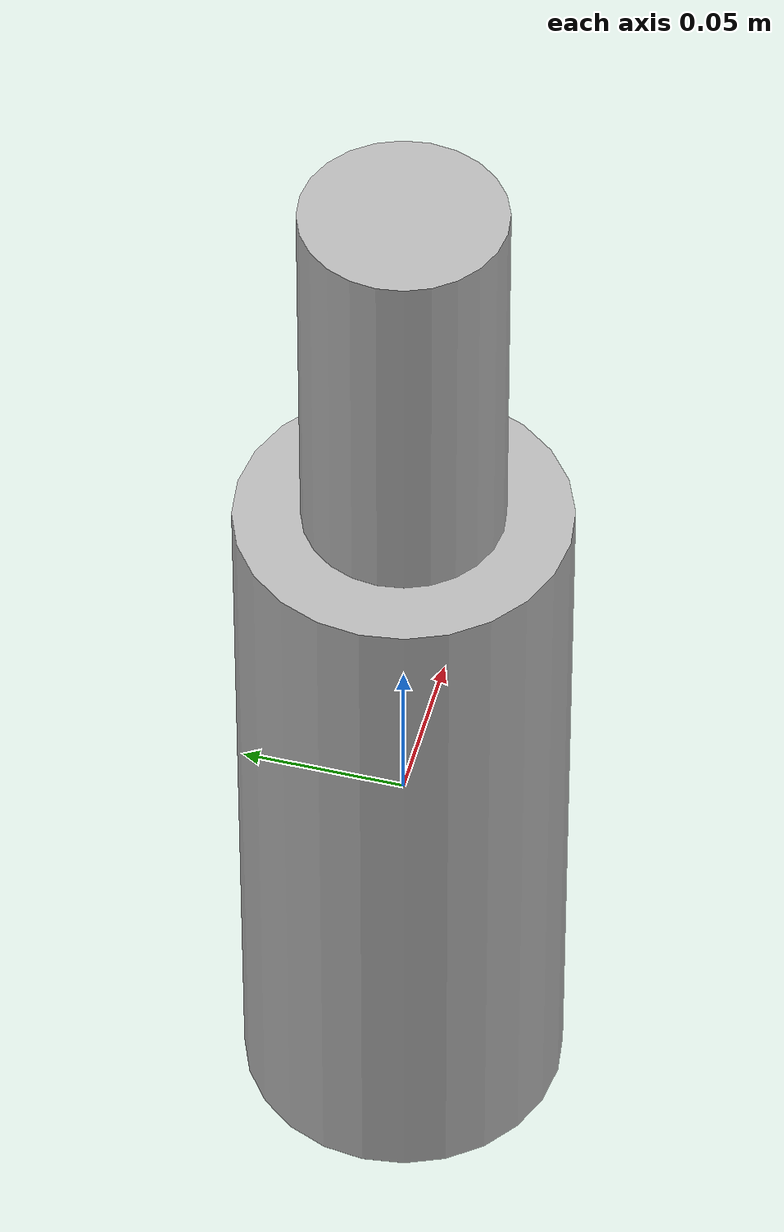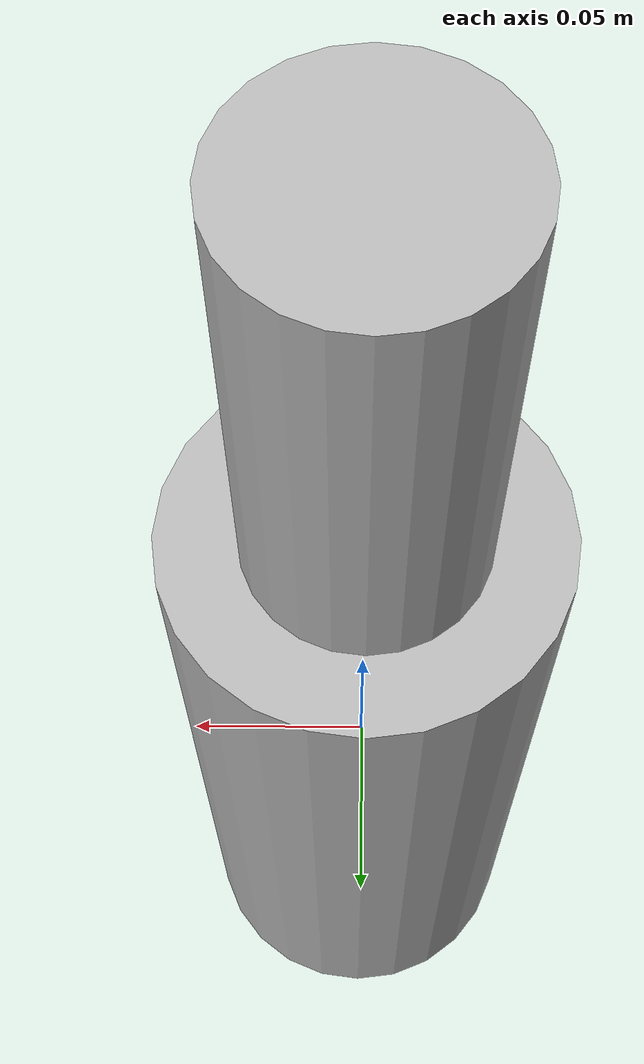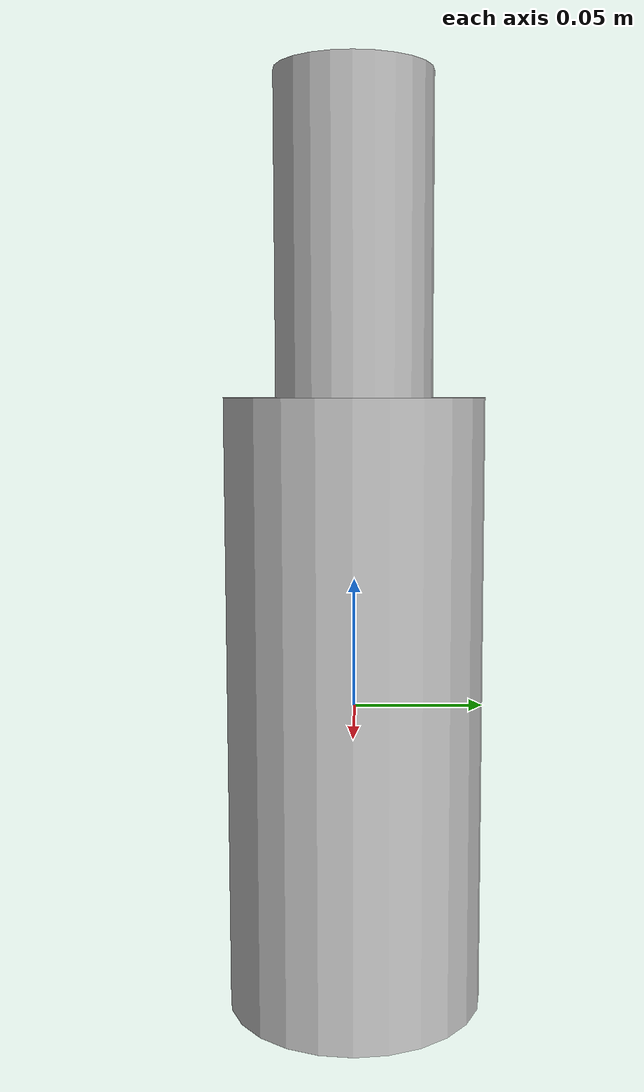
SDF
<?xml version='1.0'?>
<sdf version='1.6'>
		<model name="TwoBodiesPlusPrismaticJoint">
			<self_collide>true</self_collide>
			<pose>0.0 0.0 0.0 0.0 0.0 0.0</pose>
			<!-- Start of parts of the pmodel TwoBodiesPlusPrismaticJoint -->
			<!-- End of parts of the pmodel TwoBodiesPlusPrismaticJoint -->

			<!-- Start of links of the pmodel TwoBodiesPlusPrismaticJoint -->
			<!-- link full name is TwoBodiesPlusPrismaticJoint::base_link -->
			<link name="1-base_link">
					<pose>0.0 0.0 0.0 0.0 0.0 0.0</pose>
					<inertial>
						<pose>0.0 0.0 0.0 0.0 0.0 0.0</pose>
						<inertia>
							<ixx>0.4000000059604645</ixx>
							<ixy>0.0</ixy>
							<ixz>0.0</ixz>
							<iyy>0.4000000059604645</iyy>
							<iyz>0.0</iyz>
							<izz>0.20000000298023224</izz>
						</inertia>
						<mass>10.0</mass>
					</inertial>
					<!-- body full name is TwoBodiesPlusPrismaticJoint::base_link::base_body -->
					<collision name="1--base_body">
						<laser_retro>0.0</laser_retro>
						<pose>0.0 0.0 0.0 0.0 0.0 0.0</pose>
						<geometry>
							<cylinder>
								<radius>0.05000000074505806</radius>
								<length>0.23999999463558197</length>
							</cylinder>
						</geometry>
						<surface>
							<bounce>
								<restitution_coefficient>0.0</restitution_coefficient>
								<threshold>100000.0</threshold>
							</bounce>
							<friction>
								<ode>
									<mu>1.0</mu>
									<mu2>1.0</mu2>
									<fdir1>0.0 0.0 0.0</fdir1>
									<slip1>0.0</slip1>
									<slip2>0.0</slip2>
								</ode>
								<torsional>
									<coefficient>1.0</coefficient>
									<surface_radius>0.0</surface_radius>
								</torsional>
							</friction>
						</surface>
					</collision>
					<visual name="1--base_body">
						<laser_retro>0.0</laser_retro>
						<pose>0.0 0.0 0.0 0.0 0.0 0.0</pose>
						<geometry>
							<cylinder>
								<radius>0.05000000074505806</radius>
								<length>0.23999999463558197</length>
							</cylinder>
						</geometry>
						<surface>
							<bounce>
								<restitution_coefficient>0.0</restitution_coefficient>
								<threshold>100000.0</threshold>
							</bounce>
							<friction>
								<ode>
									<mu>1.0</mu>
									<mu2>1.0</mu2>
									<fdir1>0.0 0.0 0.0</fdir1>
									<slip1>0.0</slip1>
									<slip2>0.0</slip2>
								</ode>
								<torsional>
									<coefficient>1.0</coefficient>
									<surface_radius>0.0</surface_radius>
								</torsional>
							</friction>
						</surface>
					</visual>
			</link>
			<!-- link full name is TwoBodiesPlusPrismaticJoint::second_link -->
			<link name="2-second_link">
					<pose>0.0 0.0 0.11999999731779099 0.0 0.0 0.0</pose>
					<inertial>
						<pose>0.0 0.0 0.0 0.0 0.0 0.0</pose>
						<inertia>
							<ixx>0.0</ixx>
							<ixy>2.835000050254166E-4</ixy>
							<ixz>0.0</ixz>
							<iyy>2.835000050254166E-4</iyy>
							<iyz>0.0</iyz>
							<izz>3.239999932702631E-4</izz>
						</inertia>
						<mass>10.0</mass>
					</inertial>
					<!-- body full name is TwoBodiesPlusPrismaticJoint::second_link::second_body -->
					<collision name="2--second_body">
						<laser_retro>0.0</laser_retro>
						<pose>0.0 0.0 0.0 0.0 0.0 0.0</pose>
						<geometry>
							<cylinder>
								<radius>0.029999999329447746</radius>
								<length>0.23999999463558197</length>
							</cylinder>
						</geometry>
						<surface>
							<bounce>
								<restitution_coefficient>0.0</restitution_coefficient>
								<threshold>100000.0</threshold>
							</bounce>
							<friction>
								<ode>
									<mu>1.0</mu>
									<mu2>1.0</mu2>
									<fdir1>0.0 0.0 0.0</fdir1>
									<slip1>0.0</slip1>
									<slip2>0.0</slip2>
								</ode>
								<torsional>
									<coefficient>1.0</coefficient>
									<surface_radius>0.0</surface_radius>
								</torsional>
							</friction>
						</surface>
					</collision>
					<visual name="2--second_body">
						<laser_retro>0.0</laser_retro>
						<pose>0.0 0.0 0.0 0.0 0.0 0.0</pose>
						<geometry>
							<cylinder>
								<radius>0.029999999329447746</radius>
								<length>0.23999999463558197</length>
							</cylinder>
						</geometry>
						<surface>
							<bounce>
								<restitution_coefficient>0.0</restitution_coefficient>
								<threshold>100000.0</threshold>
							</bounce>
							<friction>
								<ode>
									<mu>1.0</mu>
									<mu2>1.0</mu2>
									<fdir1>0.0 0.0 0.0</fdir1>
									<slip1>0.0</slip1>
									<slip2>0.0</slip2>
								</ode>
								<torsional>
									<coefficient>1.0</coefficient>
									<surface_radius>0.0</surface_radius>
								</torsional>
							</friction>
						</surface>
					</visual>
			</link>
			<!-- End of links of the pmodel TwoBodiesPlusPrismaticJoint -->

			<!-- Start of joints of the pmodel TwoBodiesPlusPrismaticJoint -->
			<!-- Full name of joint: TwoBodiesPlusPrismaticJoint::second_link::my_prismatic_joint from TwoBodiesPlusPrismaticJoint::second_link to TwoBodiesPlusPrismaticJoint::base_link-->
			<joint name="3-my_prismatic_joint" type="prismatic">
				<pose>0.0 0.0 0.11999999731779099 0.0 -0.0 0.0</pose>
				<parent>2-second_link</parent>
				<child>1-base_link</child>
				<!-- WARNING: The SDF generator relies on annotations of the joint 3-my_prismatic_joint to specify in SDF aspects of the joint that are
					 accounted for in the equations. -->
				<axis>
					<xyz>0 0 1</xyz>
					<initial_position>0.009999999776482582</initial_position>
					<dynamics>
						<damping>0.10000000149011612</damping>
						<friction>0.10000000149011612</friction>
						<spring_reference>0.10000000149011612</spring_reference>
						<spring_stiffness>0.10000000149011612</spring_stiffness>
					</dynamics>
					<limit>
						<lower>-0.10000000149011612</lower>
						<upper>2.0</upper>
						<effort>1.100000023841858</effort>
						<velocity>-1.2000000476837158</velocity>
						<stiffness>1.2999999523162842</stiffness>
						<dissipation>1.399999976158142</dissipation>
					</limit>
				</axis>
			</joint>
			<!-- End of joints of the pmodel TwoBodiesPlusPrismaticJoint -->

			<!-- Start of fixed connections of the pmodel TwoBodiesPlusPrismaticJoint -->
			<!-- End of fixed connections of the pmodel TwoBodiesPlusPrismaticJoint -->
		</model>
</sdf>
